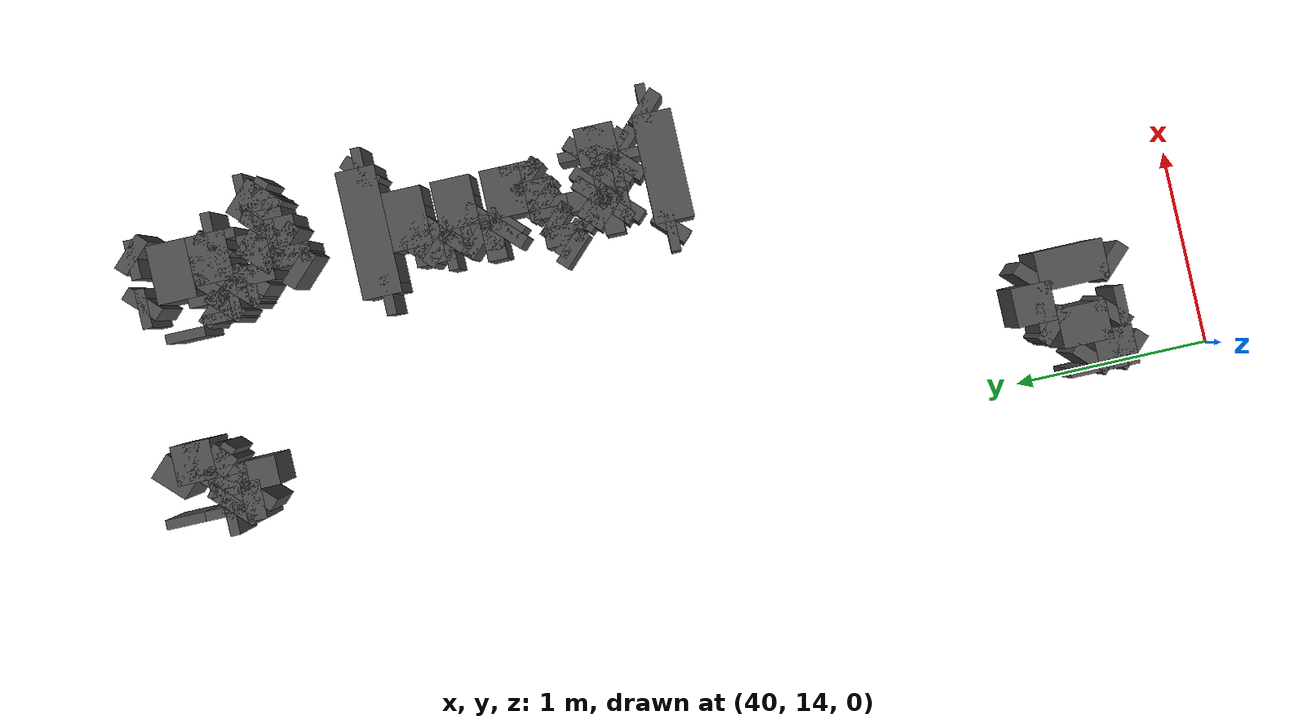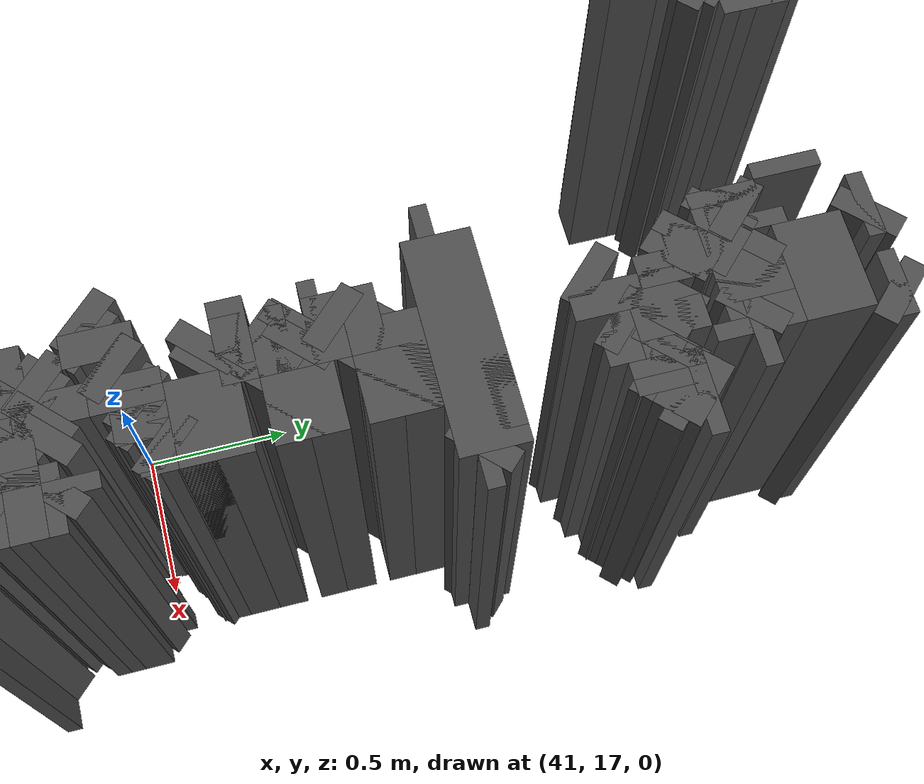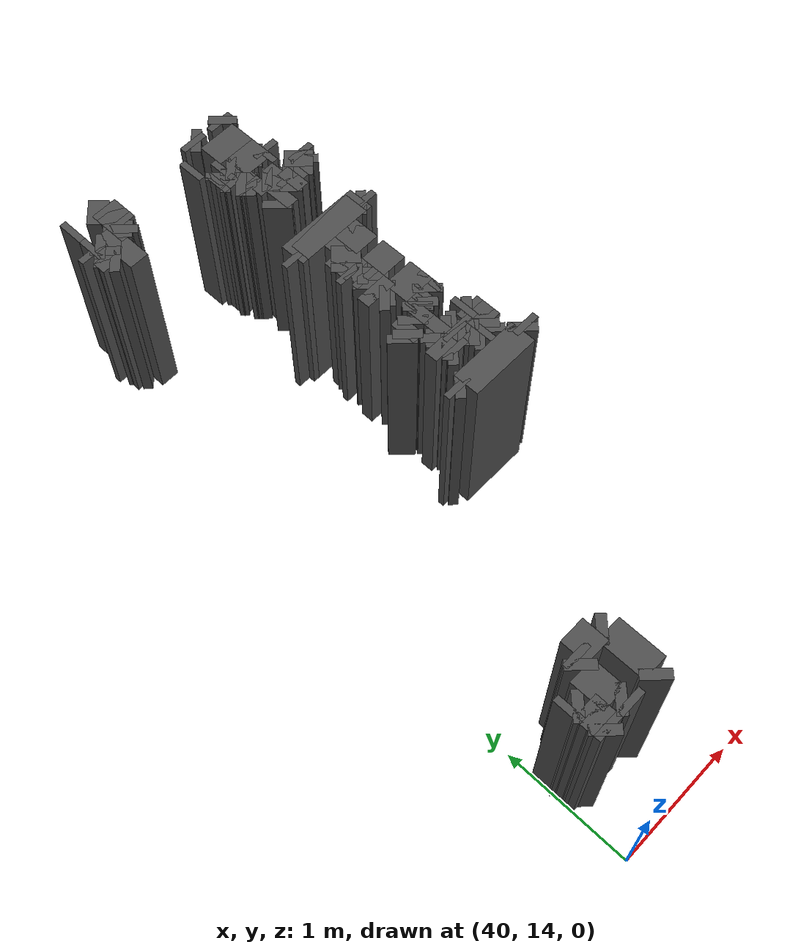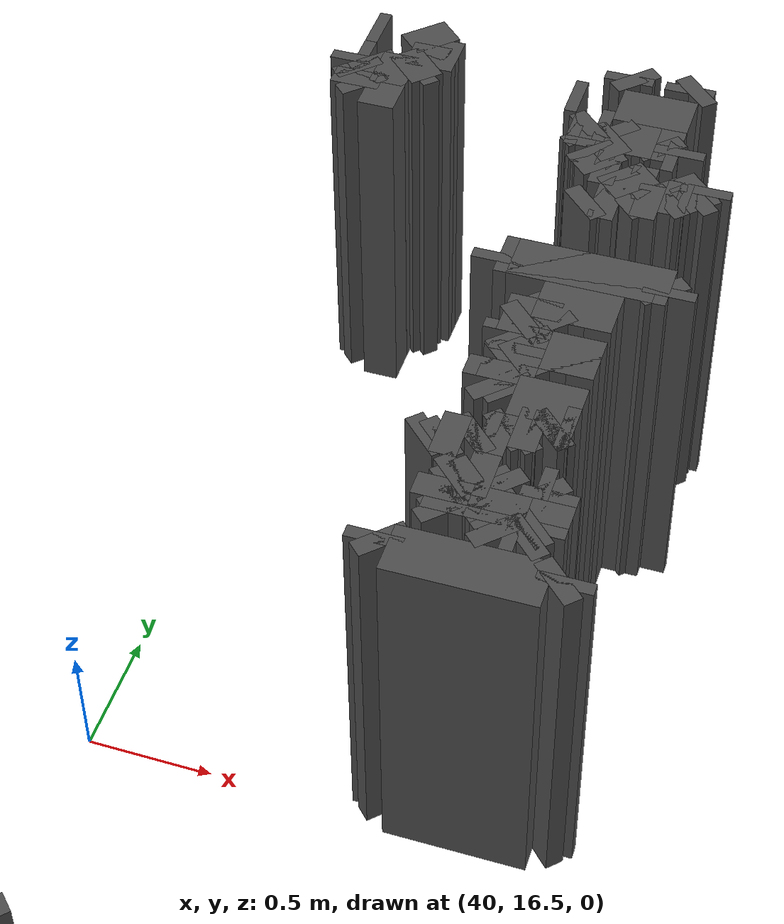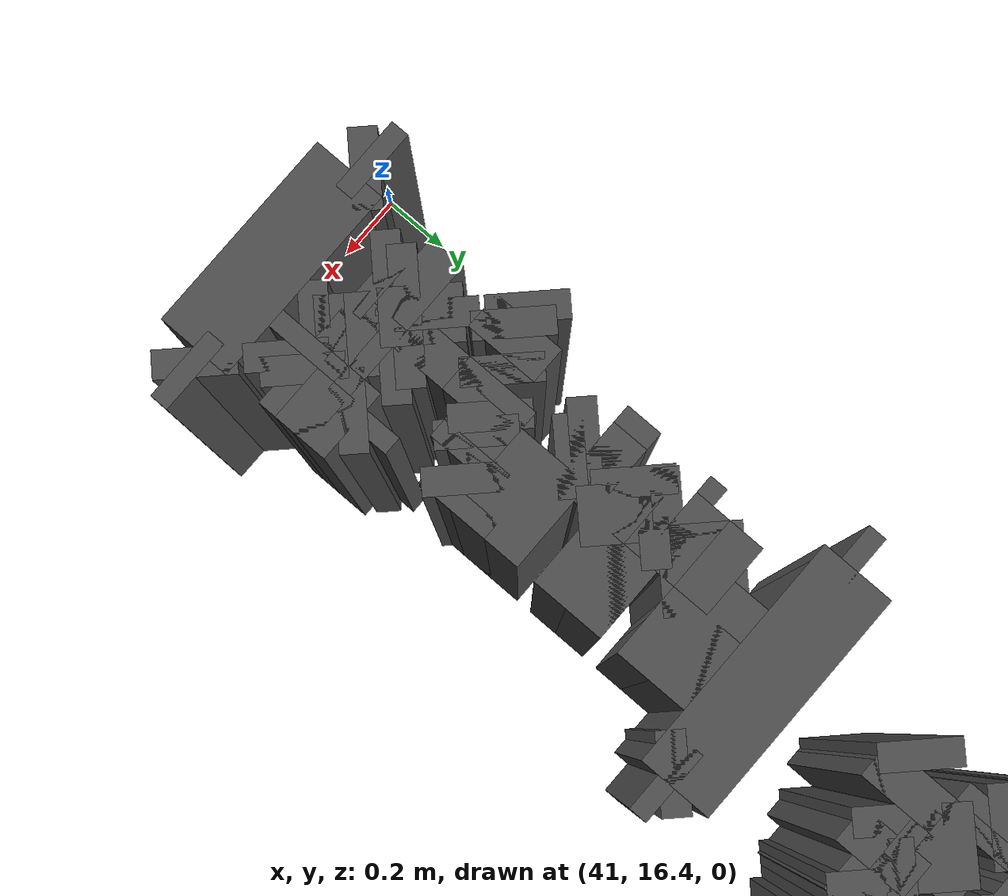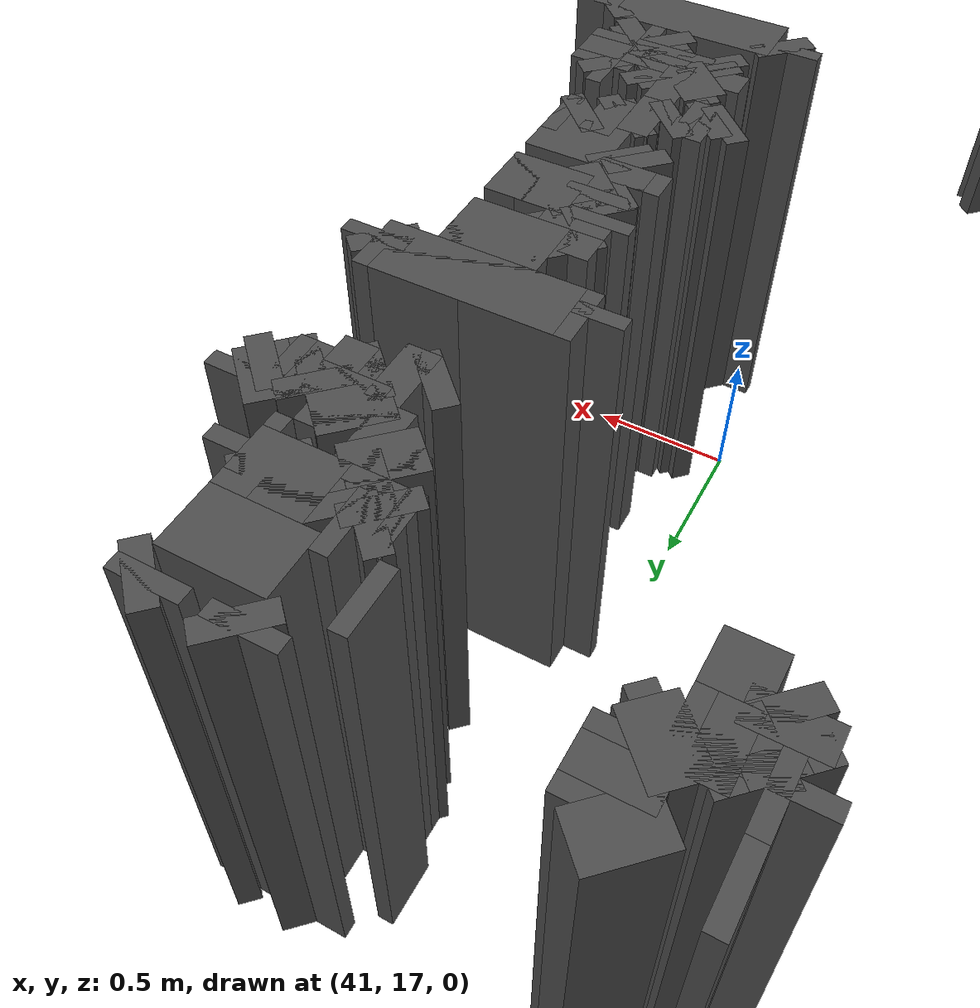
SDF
<sdf version="1.9">
 <model name="generated_walls">
  <static>true</static>
  <link name="wall_100_0">
   <pose>41.350 19.225 0.75 0 0 1.571</pose>
   <collision name="collision"><geometry><box><size>0.050 0.2 1.5</size></box></geometry></collision>
   <visual name="visual">
    <geometry><box><size>0.050 0.2 1.5</size></box></geometry>
    <material><ambient>0.3 0.3 0.3 1</ambient></material>
   </visual>
  </link>
  <link name="wall_100_11">
   <pose>41.625 19.225 0.75 0 0 -2.356</pose>
   <collision name="collision"><geometry><box><size>0.071 0.2 1.5</size></box></geometry></collision>
   <visual name="visual">
    <geometry><box><size>0.071 0.2 1.5</size></box></geometry>
    <material><ambient>0.3 0.3 0.3 1</ambient></material>
   </visual>
  </link>
  <link name="wall_100_12">
   <pose>41.600 19.225 0.75 0 0 1.571</pose>
   <collision name="collision"><geometry><box><size>0.050 0.2 1.5</size></box></geometry></collision>
   <visual name="visual">
    <geometry><box><size>0.050 0.2 1.5</size></box></geometry>
    <material><ambient>0.3 0.3 0.3 1</ambient></material>
   </visual>
  </link>
  <link name="wall_100_19">
   <pose>41.375 19.225 0.75 0 0 -0.785</pose>
   <collision name="collision"><geometry><box><size>0.071 0.2 1.5</size></box></geometry></collision>
   <visual name="visual">
    <geometry><box><size>0.071 0.2 1.5</size></box></geometry>
    <material><ambient>0.3 0.3 0.3 1</ambient></material>
   </visual>
  </link>
  <link name="wall_104_0">
   <pose>41.500 19.050 0.75 0 0 0.000</pose>
   <collision name="collision"><geometry><box><size>0.300 0.2 1.5</size></box></geometry></collision>
   <visual name="visual">
    <geometry><box><size>0.300 0.2 1.5</size></box></geometry>
    <material><ambient>0.3 0.3 0.3 1</ambient></material>
   </visual>
  </link>
  <link name="wall_105_0">
   <pose>41.175 19.050 0.75 0 0 0.000</pose>
   <collision name="collision"><geometry><box><size>0.050 0.2 1.5</size></box></geometry></collision>
   <visual name="visual">
    <geometry><box><size>0.050 0.2 1.5</size></box></geometry>
    <material><ambient>0.3 0.3 0.3 1</ambient></material>
   </visual>
  </link>
  <link name="wall_106_0">
   <pose>40.300 18.900 0.75 0 0 1.571</pose>
   <collision name="collision"><geometry><box><size>0.100 0.2 1.5</size></box></geometry></collision>
   <visual name="visual">
    <geometry><box><size>0.100 0.2 1.5</size></box></geometry>
    <material><ambient>0.3 0.3 0.3 1</ambient></material>
   </visual>
  </link>
  <link name="wall_106_1">
   <pose>40.275 18.975 0.75 0 0 2.356</pose>
   <collision name="collision"><geometry><box><size>0.071 0.2 1.5</size></box></geometry></collision>
   <visual name="visual">
    <geometry><box><size>0.071 0.2 1.5</size></box></geometry>
    <material><ambient>0.3 0.3 0.3 1</ambient></material>
   </visual>
  </link>
  <link name="wall_106_2">
   <pose>40.250 19.025 0.75 0 0 1.571</pose>
   <collision name="collision"><geometry><box><size>0.050 0.2 1.5</size></box></geometry></collision>
   <visual name="visual">
    <geometry><box><size>0.050 0.2 1.5</size></box></geometry>
    <material><ambient>0.3 0.3 0.3 1</ambient></material>
   </visual>
  </link>
  <link name="wall_106_3">
   <pose>40.275 19.050 0.75 0 0 0.000</pose>
   <collision name="collision"><geometry><box><size>0.050 0.2 1.5</size></box></geometry></collision>
   <visual name="visual">
    <geometry><box><size>0.050 0.2 1.5</size></box></geometry>
    <material><ambient>0.3 0.3 0.3 1</ambient></material>
   </visual>
  </link>
  <link name="wall_106_4">
   <pose>40.325 19.025 0.75 0 0 -0.785</pose>
   <collision name="collision"><geometry><box><size>0.071 0.2 1.5</size></box></geometry></collision>
   <visual name="visual">
    <geometry><box><size>0.071 0.2 1.5</size></box></geometry>
    <material><ambient>0.3 0.3 0.3 1</ambient></material>
   </visual>
  </link>
  <link name="wall_106_5">
   <pose>40.400 19.000 0.75 0 0 0.000</pose>
   <collision name="collision"><geometry><box><size>0.100 0.2 1.5</size></box></geometry></collision>
   <visual name="visual">
    <geometry><box><size>0.100 0.2 1.5</size></box></geometry>
    <material><ambient>0.3 0.3 0.3 1</ambient></material>
   </visual>
  </link>
  <link name="wall_106_6">
   <pose>40.500 19.050 0.75 0 0 0.785</pose>
   <collision name="collision"><geometry><box><size>0.141 0.2 1.5</size></box></geometry></collision>
   <visual name="visual">
    <geometry><box><size>0.141 0.2 1.5</size></box></geometry>
    <material><ambient>0.3 0.3 0.3 1</ambient></material>
   </visual>
  </link>
  <link name="wall_106_7">
   <pose>40.550 19.150 0.75 0 0 1.571</pose>
   <collision name="collision"><geometry><box><size>0.100 0.2 1.5</size></box></geometry></collision>
   <visual name="visual">
    <geometry><box><size>0.100 0.2 1.5</size></box></geometry>
    <material><ambient>0.3 0.3 0.3 1</ambient></material>
   </visual>
  </link>
  <link name="wall_106_8">
   <pose>40.500 19.250 0.75 0 0 2.356</pose>
   <collision name="collision"><geometry><box><size>0.141 0.2 1.5</size></box></geometry></collision>
   <visual name="visual">
    <geometry><box><size>0.141 0.2 1.5</size></box></geometry>
    <material><ambient>0.3 0.3 0.3 1</ambient></material>
   </visual>
  </link>
  <link name="wall_106_11">
   <pose>40.275 19.250 0.75 0 0 3.142</pose>
   <collision name="collision"><geometry><box><size>0.050 0.2 1.5</size></box></geometry></collision>
   <visual name="visual">
    <geometry><box><size>0.050 0.2 1.5</size></box></geometry>
    <material><ambient>0.3 0.3 0.3 1</ambient></material>
   </visual>
  </link>
  <link name="wall_106_15">
   <pose>40.550 19.150 0.75 0 0 -1.571</pose>
   <collision name="collision"><geometry><box><size>0.200 0.2 1.5</size></box></geometry></collision>
   <visual name="visual">
    <geometry><box><size>0.200 0.2 1.5</size></box></geometry>
    <material><ambient>0.3 0.3 0.3 1</ambient></material>
   </visual>
  </link>
  <link name="wall_106_16">
   <pose>40.525 19.025 0.75 0 0 -2.356</pose>
   <collision name="collision"><geometry><box><size>0.071 0.2 1.5</size></box></geometry></collision>
   <visual name="visual">
    <geometry><box><size>0.071 0.2 1.5</size></box></geometry>
    <material><ambient>0.3 0.3 0.3 1</ambient></material>
   </visual>
  </link>
  <link name="wall_106_17">
   <pose>40.425 19.000 0.75 0 0 3.142</pose>
   <collision name="collision"><geometry><box><size>0.150 0.2 1.5</size></box></geometry></collision>
   <visual name="visual">
    <geometry><box><size>0.150 0.2 1.5</size></box></geometry>
    <material><ambient>0.3 0.3 0.3 1</ambient></material>
   </visual>
  </link>
  <link name="wall_106_18">
   <pose>40.325 18.975 0.75 0 0 -2.356</pose>
   <collision name="collision"><geometry><box><size>0.071 0.2 1.5</size></box></geometry></collision>
   <visual name="visual">
    <geometry><box><size>0.071 0.2 1.5</size></box></geometry>
    <material><ambient>0.3 0.3 0.3 1</ambient></material>
   </visual>
  </link>
  <link name="wall_106_19">
   <pose>40.300 18.925 0.75 0 0 -1.571</pose>
   <collision name="collision"><geometry><box><size>0.050 0.2 1.5</size></box></geometry></collision>
   <visual name="visual">
    <geometry><box><size>0.050 0.2 1.5</size></box></geometry>
    <material><ambient>0.3 0.3 0.3 1</ambient></material>
   </visual>
  </link>
  <link name="wall_106_20">
   <pose>40.325 18.875 0.75 0 0 -0.785</pose>
   <collision name="collision"><geometry><box><size>0.071 0.2 1.5</size></box></geometry></collision>
   <visual name="visual">
    <geometry><box><size>0.071 0.2 1.5</size></box></geometry>
    <material><ambient>0.3 0.3 0.3 1</ambient></material>
   </visual>
  </link>
  <link name="wall_106_21">
   <pose>40.425 18.850 0.75 0 0 0.000</pose>
   <collision name="collision"><geometry><box><size>0.150 0.2 1.5</size></box></geometry></collision>
   <visual name="visual">
    <geometry><box><size>0.150 0.2 1.5</size></box></geometry>
    <material><ambient>0.3 0.3 0.3 1</ambient></material>
   </visual>
  </link>
  <link name="wall_112_0">
   <pose>41.375 18.425 0.75 0 0 0.785</pose>
   <collision name="collision"><geometry><box><size>0.071 0.2 1.5</size></box></geometry></collision>
   <visual name="visual">
    <geometry><box><size>0.071 0.2 1.5</size></box></geometry>
    <material><ambient>0.3 0.3 0.3 1</ambient></material>
   </visual>
  </link>
  <link name="wall_112_1">
   <pose>41.450 18.450 0.75 0 0 0.000</pose>
   <collision name="collision"><geometry><box><size>0.100 0.2 1.5</size></box></geometry></collision>
   <visual name="visual">
    <geometry><box><size>0.100 0.2 1.5</size></box></geometry>
    <material><ambient>0.3 0.3 0.3 1</ambient></material>
   </visual>
  </link>
  <link name="wall_112_2">
   <pose>41.525 18.475 0.75 0 0 0.785</pose>
   <collision name="collision"><geometry><box><size>0.071 0.2 1.5</size></box></geometry></collision>
   <visual name="visual">
    <geometry><box><size>0.071 0.2 1.5</size></box></geometry>
    <material><ambient>0.3 0.3 0.3 1</ambient></material>
   </visual>
  </link>
  <link name="wall_112_3">
   <pose>41.550 18.525 0.75 0 0 1.571</pose>
   <collision name="collision"><geometry><box><size>0.050 0.2 1.5</size></box></geometry></collision>
   <visual name="visual">
    <geometry><box><size>0.050 0.2 1.5</size></box></geometry>
    <material><ambient>0.3 0.3 0.3 1</ambient></material>
   </visual>
  </link>
  <link name="wall_112_4">
   <pose>41.500 18.600 0.75 0 0 2.356</pose>
   <collision name="collision"><geometry><box><size>0.141 0.2 1.5</size></box></geometry></collision>
   <visual name="visual">
    <geometry><box><size>0.141 0.2 1.5</size></box></geometry>
    <material><ambient>0.3 0.3 0.3 1</ambient></material>
   </visual>
  </link>
  <link name="wall_112_5">
   <pose>41.400 18.650 0.75 0 0 3.142</pose>
   <collision name="collision"><geometry><box><size>0.100 0.2 1.5</size></box></geometry></collision>
   <visual name="visual">
    <geometry><box><size>0.100 0.2 1.5</size></box></geometry>
    <material><ambient>0.3 0.3 0.3 1</ambient></material>
   </visual>
  </link>
  <link name="wall_112_6">
   <pose>41.350 18.675 0.75 0 0 1.571</pose>
   <collision name="collision"><geometry><box><size>0.050 0.2 1.5</size></box></geometry></collision>
   <visual name="visual">
    <geometry><box><size>0.050 0.2 1.5</size></box></geometry>
    <material><ambient>0.3 0.3 0.3 1</ambient></material>
   </visual>
  </link>
  <link name="wall_112_7">
   <pose>41.325 18.725 0.75 0 0 2.356</pose>
   <collision name="collision"><geometry><box><size>0.071 0.2 1.5</size></box></geometry></collision>
   <visual name="visual">
    <geometry><box><size>0.071 0.2 1.5</size></box></geometry>
    <material><ambient>0.3 0.3 0.3 1</ambient></material>
   </visual>
  </link>
  <link name="wall_112_8">
   <pose>41.300 18.775 0.75 0 0 1.571</pose>
   <collision name="collision"><geometry><box><size>0.050 0.2 1.5</size></box></geometry></collision>
   <visual name="visual">
    <geometry><box><size>0.050 0.2 1.5</size></box></geometry>
    <material><ambient>0.3 0.3 0.3 1</ambient></material>
   </visual>
  </link>
  <link name="wall_112_9">
   <pose>41.275 18.825 0.75 0 0 2.356</pose>
   <collision name="collision"><geometry><box><size>0.071 0.2 1.5</size></box></geometry></collision>
   <visual name="visual">
    <geometry><box><size>0.071 0.2 1.5</size></box></geometry>
    <material><ambient>0.3 0.3 0.3 1</ambient></material>
   </visual>
  </link>
  <link name="wall_112_10">
   <pose>41.225 18.850 0.75 0 0 3.142</pose>
   <collision name="collision"><geometry><box><size>0.050 0.2 1.5</size></box></geometry></collision>
   <visual name="visual">
    <geometry><box><size>0.050 0.2 1.5</size></box></geometry>
    <material><ambient>0.3 0.3 0.3 1</ambient></material>
   </visual>
  </link>
  <link name="wall_112_11">
   <pose>41.225 18.850 0.75 0 0 0.000</pose>
   <collision name="collision"><geometry><box><size>0.050 0.2 1.5</size></box></geometry></collision>
   <visual name="visual">
    <geometry><box><size>0.050 0.2 1.5</size></box></geometry>
    <material><ambient>0.3 0.3 0.3 1</ambient></material>
   </visual>
  </link>
  <link name="wall_112_12">
   <pose>41.275 18.875 0.75 0 0 0.785</pose>
   <collision name="collision"><geometry><box><size>0.071 0.2 1.5</size></box></geometry></collision>
   <visual name="visual">
    <geometry><box><size>0.071 0.2 1.5</size></box></geometry>
    <material><ambient>0.3 0.3 0.3 1</ambient></material>
   </visual>
  </link>
  <link name="wall_112_13">
   <pose>41.325 18.900 0.75 0 0 0.000</pose>
   <collision name="collision"><geometry><box><size>0.050 0.2 1.5</size></box></geometry></collision>
   <visual name="visual">
    <geometry><box><size>0.050 0.2 1.5</size></box></geometry>
    <material><ambient>0.3 0.3 0.3 1</ambient></material>
   </visual>
  </link>
  <link name="wall_112_14">
   <pose>41.375 18.875 0.75 0 0 -0.785</pose>
   <collision name="collision"><geometry><box><size>0.071 0.2 1.5</size></box></geometry></collision>
   <visual name="visual">
    <geometry><box><size>0.071 0.2 1.5</size></box></geometry>
    <material><ambient>0.3 0.3 0.3 1</ambient></material>
   </visual>
  </link>
  <link name="wall_112_15">
   <pose>41.525 18.850 0.75 0 0 0.000</pose>
   <collision name="collision"><geometry><box><size>0.250 0.2 1.5</size></box></geometry></collision>
   <visual name="visual">
    <geometry><box><size>0.250 0.2 1.5</size></box></geometry>
    <material><ambient>0.3 0.3 0.3 1</ambient></material>
   </visual>
  </link>
  <link name="wall_112_16">
   <pose>41.650 18.825 0.75 0 0 -1.571</pose>
   <collision name="collision"><geometry><box><size>0.050 0.2 1.5</size></box></geometry></collision>
   <visual name="visual">
    <geometry><box><size>0.050 0.2 1.5</size></box></geometry>
    <material><ambient>0.3 0.3 0.3 1</ambient></material>
   </visual>
  </link>
  <link name="wall_112_17">
   <pose>41.625 18.800 0.75 0 0 3.142</pose>
   <collision name="collision"><geometry><box><size>0.050 0.2 1.5</size></box></geometry></collision>
   <visual name="visual">
    <geometry><box><size>0.050 0.2 1.5</size></box></geometry>
    <material><ambient>0.3 0.3 0.3 1</ambient></material>
   </visual>
  </link>
  <link name="wall_112_18">
   <pose>41.575 18.825 0.75 0 0 2.356</pose>
   <collision name="collision"><geometry><box><size>0.071 0.2 1.5</size></box></geometry></collision>
   <visual name="visual">
    <geometry><box><size>0.071 0.2 1.5</size></box></geometry>
    <material><ambient>0.3 0.3 0.3 1</ambient></material>
   </visual>
  </link>
  <link name="wall_112_19">
   <pose>41.475 18.850 0.75 0 0 3.142</pose>
   <collision name="collision"><geometry><box><size>0.150 0.2 1.5</size></box></geometry></collision>
   <visual name="visual">
    <geometry><box><size>0.150 0.2 1.5</size></box></geometry>
    <material><ambient>0.3 0.3 0.3 1</ambient></material>
   </visual>
  </link>
  <link name="wall_112_20">
   <pose>41.350 18.800 0.75 0 0 -2.356</pose>
   <collision name="collision"><geometry><box><size>0.141 0.2 1.5</size></box></geometry></collision>
   <visual name="visual">
    <geometry><box><size>0.141 0.2 1.5</size></box></geometry>
    <material><ambient>0.3 0.3 0.3 1</ambient></material>
   </visual>
  </link>
  <link name="wall_112_21">
   <pose>41.350 18.700 0.75 0 0 -0.785</pose>
   <collision name="collision"><geometry><box><size>0.141 0.2 1.5</size></box></geometry></collision>
   <visual name="visual">
    <geometry><box><size>0.141 0.2 1.5</size></box></geometry>
    <material><ambient>0.3 0.3 0.3 1</ambient></material>
   </visual>
  </link>
  <link name="wall_112_22">
   <pose>41.425 18.650 0.75 0 0 0.000</pose>
   <collision name="collision"><geometry><box><size>0.050 0.2 1.5</size></box></geometry></collision>
   <visual name="visual">
    <geometry><box><size>0.050 0.2 1.5</size></box></geometry>
    <material><ambient>0.3 0.3 0.3 1</ambient></material>
   </visual>
  </link>
  <link name="wall_112_23">
   <pose>41.475 18.625 0.75 0 0 -0.785</pose>
   <collision name="collision"><geometry><box><size>0.071 0.2 1.5</size></box></geometry></collision>
   <visual name="visual">
    <geometry><box><size>0.071 0.2 1.5</size></box></geometry>
    <material><ambient>0.3 0.3 0.3 1</ambient></material>
   </visual>
  </link>
  <link name="wall_112_24">
   <pose>41.550 18.600 0.75 0 0 0.000</pose>
   <collision name="collision"><geometry><box><size>0.100 0.2 1.5</size></box></geometry></collision>
   <visual name="visual">
    <geometry><box><size>0.100 0.2 1.5</size></box></geometry>
    <material><ambient>0.3 0.3 0.3 1</ambient></material>
   </visual>
  </link>
  <link name="wall_112_25">
   <pose>41.625 18.575 0.75 0 0 -0.785</pose>
   <collision name="collision"><geometry><box><size>0.071 0.2 1.5</size></box></geometry></collision>
   <visual name="visual">
    <geometry><box><size>0.071 0.2 1.5</size></box></geometry>
    <material><ambient>0.3 0.3 0.3 1</ambient></material>
   </visual>
  </link>
  <link name="wall_112_26">
   <pose>41.675 18.550 0.75 0 0 0.000</pose>
   <collision name="collision"><geometry><box><size>0.050 0.2 1.5</size></box></geometry></collision>
   <visual name="visual">
    <geometry><box><size>0.050 0.2 1.5</size></box></geometry>
    <material><ambient>0.3 0.3 0.3 1</ambient></material>
   </visual>
  </link>
  <link name="wall_112_27">
   <pose>41.750 18.600 0.75 0 0 0.785</pose>
   <collision name="collision"><geometry><box><size>0.141 0.2 1.5</size></box></geometry></collision>
   <visual name="visual">
    <geometry><box><size>0.141 0.2 1.5</size></box></geometry>
    <material><ambient>0.3 0.3 0.3 1</ambient></material>
   </visual>
  </link>
  <link name="wall_112_28">
   <pose>41.800 18.625 0.75 0 0 -1.571</pose>
   <collision name="collision"><geometry><box><size>0.050 0.2 1.5</size></box></geometry></collision>
   <visual name="visual">
    <geometry><box><size>0.050 0.2 1.5</size></box></geometry>
    <material><ambient>0.3 0.3 0.3 1</ambient></material>
   </visual>
  </link>
  <link name="wall_112_29">
   <pose>41.775 18.575 0.75 0 0 -2.356</pose>
   <collision name="collision"><geometry><box><size>0.071 0.2 1.5</size></box></geometry></collision>
   <visual name="visual">
    <geometry><box><size>0.071 0.2 1.5</size></box></geometry>
    <material><ambient>0.3 0.3 0.3 1</ambient></material>
   </visual>
  </link>
  <link name="wall_112_30">
   <pose>41.725 18.550 0.75 0 0 3.142</pose>
   <collision name="collision"><geometry><box><size>0.050 0.2 1.5</size></box></geometry></collision>
   <visual name="visual">
    <geometry><box><size>0.050 0.2 1.5</size></box></geometry>
    <material><ambient>0.3 0.3 0.3 1</ambient></material>
   </visual>
  </link>
  <link name="wall_112_31">
   <pose>41.675 18.525 0.75 0 0 -2.356</pose>
   <collision name="collision"><geometry><box><size>0.071 0.2 1.5</size></box></geometry></collision>
   <visual name="visual">
    <geometry><box><size>0.071 0.2 1.5</size></box></geometry>
    <material><ambient>0.3 0.3 0.3 1</ambient></material>
   </visual>
  </link>
  <link name="wall_112_32">
   <pose>41.600 18.500 0.75 0 0 3.142</pose>
   <collision name="collision"><geometry><box><size>0.100 0.2 1.5</size></box></geometry></collision>
   <visual name="visual">
    <geometry><box><size>0.100 0.2 1.5</size></box></geometry>
    <material><ambient>0.3 0.3 0.3 1</ambient></material>
   </visual>
  </link>
  <link name="wall_112_33">
   <pose>41.525 18.475 0.75 0 0 -2.356</pose>
   <collision name="collision"><geometry><box><size>0.071 0.2 1.5</size></box></geometry></collision>
   <visual name="visual">
    <geometry><box><size>0.071 0.2 1.5</size></box></geometry>
    <material><ambient>0.3 0.3 0.3 1</ambient></material>
   </visual>
  </link>
  <link name="wall_112_34">
   <pose>41.450 18.450 0.75 0 0 3.142</pose>
   <collision name="collision"><geometry><box><size>0.100 0.2 1.5</size></box></geometry></collision>
   <visual name="visual">
    <geometry><box><size>0.100 0.2 1.5</size></box></geometry>
    <material><ambient>0.3 0.3 0.3 1</ambient></material>
   </visual>
  </link>
  <link name="wall_116_0">
   <pose>41.150 18.025 0.75 0 0 1.571</pose>
   <collision name="collision"><geometry><box><size>0.050 0.2 1.5</size></box></geometry></collision>
   <visual name="visual">
    <geometry><box><size>0.050 0.2 1.5</size></box></geometry>
    <material><ambient>0.3 0.3 0.3 1</ambient></material>
   </visual>
  </link>
  <link name="wall_116_1">
   <pose>41.475 18.050 0.75 0 0 0.000</pose>
   <collision name="collision"><geometry><box><size>0.650 0.2 1.5</size></box></geometry></collision>
   <visual name="visual">
    <geometry><box><size>0.650 0.2 1.5</size></box></geometry>
    <material><ambient>0.3 0.3 0.3 1</ambient></material>
   </visual>
  </link>
  <link name="wall_116_2">
   <pose>41.800 18.025 0.75 0 0 -1.571</pose>
   <collision name="collision"><geometry><box><size>0.050 0.2 1.5</size></box></geometry></collision>
   <visual name="visual">
    <geometry><box><size>0.050 0.2 1.5</size></box></geometry>
    <material><ambient>0.3 0.3 0.3 1</ambient></material>
   </visual>
  </link>
  <link name="wall_116_3">
   <pose>41.775 18.025 0.75 0 0 2.356</pose>
   <collision name="collision"><geometry><box><size>0.071 0.2 1.5</size></box></geometry></collision>
   <visual name="visual">
    <geometry><box><size>0.071 0.2 1.5</size></box></geometry>
    <material><ambient>0.3 0.3 0.3 1</ambient></material>
   </visual>
  </link>
  <link name="wall_116_4">
   <pose>41.475 18.050 0.75 0 0 3.142</pose>
   <collision name="collision"><geometry><box><size>0.550 0.2 1.5</size></box></geometry></collision>
   <visual name="visual">
    <geometry><box><size>0.550 0.2 1.5</size></box></geometry>
    <material><ambient>0.3 0.3 0.3 1</ambient></material>
   </visual>
  </link>
  <link name="wall_118_0">
   <pose>41.325 17.375 0.75 0 0 2.356</pose>
   <collision name="collision"><geometry><box><size>0.071 0.2 1.5</size></box></geometry></collision>
   <visual name="visual">
    <geometry><box><size>0.071 0.2 1.5</size></box></geometry>
    <material><ambient>0.3 0.3 0.3 1</ambient></material>
   </visual>
  </link>
  <link name="wall_118_1">
   <pose>41.300 17.450 0.75 0 0 1.571</pose>
   <collision name="collision"><geometry><box><size>0.100 0.2 1.5</size></box></geometry></collision>
   <visual name="visual">
    <geometry><box><size>0.100 0.2 1.5</size></box></geometry>
    <material><ambient>0.3 0.3 0.3 1</ambient></material>
   </visual>
  </link>
  <link name="wall_118_2">
   <pose>41.325 17.525 0.75 0 0 0.785</pose>
   <collision name="collision"><geometry><box><size>0.071 0.2 1.5</size></box></geometry></collision>
   <visual name="visual">
    <geometry><box><size>0.071 0.2 1.5</size></box></geometry>
    <material><ambient>0.3 0.3 0.3 1</ambient></material>
   </visual>
  </link>
  <link name="wall_118_3">
   <pose>41.350 17.575 0.75 0 0 1.571</pose>
   <collision name="collision"><geometry><box><size>0.050 0.2 1.5</size></box></geometry></collision>
   <visual name="visual">
    <geometry><box><size>0.050 0.2 1.5</size></box></geometry>
    <material><ambient>0.3 0.3 0.3 1</ambient></material>
   </visual>
  </link>
  <link name="wall_118_4">
   <pose>41.325 17.625 0.75 0 0 2.356</pose>
   <collision name="collision"><geometry><box><size>0.071 0.2 1.5</size></box></geometry></collision>
   <visual name="visual">
    <geometry><box><size>0.071 0.2 1.5</size></box></geometry>
    <material><ambient>0.3 0.3 0.3 1</ambient></material>
   </visual>
  </link>
  <link name="wall_118_5">
   <pose>41.300 17.675 0.75 0 0 1.571</pose>
   <collision name="collision"><geometry><box><size>0.050 0.2 1.5</size></box></geometry></collision>
   <visual name="visual">
    <geometry><box><size>0.050 0.2 1.5</size></box></geometry>
    <material><ambient>0.3 0.3 0.3 1</ambient></material>
   </visual>
  </link>
  <link name="wall_118_6">
   <pose>41.325 17.725 0.75 0 0 0.785</pose>
   <collision name="collision"><geometry><box><size>0.071 0.2 1.5</size></box></geometry></collision>
   <visual name="visual">
    <geometry><box><size>0.071 0.2 1.5</size></box></geometry>
    <material><ambient>0.3 0.3 0.3 1</ambient></material>
   </visual>
  </link>
  <link name="wall_118_7">
   <pose>41.350 17.800 0.75 0 0 1.571</pose>
   <collision name="collision"><geometry><box><size>0.100 0.2 1.5</size></box></geometry></collision>
   <visual name="visual">
    <geometry><box><size>0.100 0.2 1.5</size></box></geometry>
    <material><ambient>0.3 0.3 0.3 1</ambient></material>
   </visual>
  </link>
  <link name="wall_118_8">
   <pose>41.500 17.850 0.75 0 0 0.000</pose>
   <collision name="collision"><geometry><box><size>0.300 0.2 1.5</size></box></geometry></collision>
   <visual name="visual">
    <geometry><box><size>0.300 0.2 1.5</size></box></geometry>
    <material><ambient>0.3 0.3 0.3 1</ambient></material>
   </visual>
  </link>
  <link name="wall_118_9">
   <pose>41.550 17.850 0.75 0 0 3.142</pose>
   <collision name="collision"><geometry><box><size>0.200 0.2 1.5</size></box></geometry></collision>
   <visual name="visual">
    <geometry><box><size>0.200 0.2 1.5</size></box></geometry>
    <material><ambient>0.3 0.3 0.3 1</ambient></material>
   </visual>
  </link>
  <link name="wall_118_10">
   <pose>41.400 17.800 0.75 0 0 -2.356</pose>
   <collision name="collision"><geometry><box><size>0.141 0.2 1.5</size></box></geometry></collision>
   <visual name="visual">
    <geometry><box><size>0.141 0.2 1.5</size></box></geometry>
    <material><ambient>0.3 0.3 0.3 1</ambient></material>
   </visual>
  </link>
  <link name="wall_118_11">
   <pose>41.350 17.700 0.75 0 0 -1.571</pose>
   <collision name="collision"><geometry><box><size>0.100 0.2 1.5</size></box></geometry></collision>
   <visual name="visual">
    <geometry><box><size>0.100 0.2 1.5</size></box></geometry>
    <material><ambient>0.3 0.3 0.3 1</ambient></material>
   </visual>
  </link>
  <link name="wall_118_12">
   <pose>41.375 17.625 0.75 0 0 -0.785</pose>
   <collision name="collision"><geometry><box><size>0.071 0.2 1.5</size></box></geometry></collision>
   <visual name="visual">
    <geometry><box><size>0.071 0.2 1.5</size></box></geometry>
    <material><ambient>0.3 0.3 0.3 1</ambient></material>
   </visual>
  </link>
  <link name="wall_118_13">
   <pose>41.525 17.600 0.75 0 0 0.000</pose>
   <collision name="collision"><geometry><box><size>0.250 0.2 1.5</size></box></geometry></collision>
   <visual name="visual">
    <geometry><box><size>0.250 0.2 1.5</size></box></geometry>
    <material><ambient>0.3 0.3 0.3 1</ambient></material>
   </visual>
  </link>
  <link name="wall_118_14">
   <pose>41.550 17.600 0.75 0 0 3.142</pose>
   <collision name="collision"><geometry><box><size>0.200 0.2 1.5</size></box></geometry></collision>
   <visual name="visual">
    <geometry><box><size>0.200 0.2 1.5</size></box></geometry>
    <material><ambient>0.3 0.3 0.3 1</ambient></material>
   </visual>
  </link>
  <link name="wall_118_15">
   <pose>41.400 17.550 0.75 0 0 -2.356</pose>
   <collision name="collision"><geometry><box><size>0.141 0.2 1.5</size></box></geometry></collision>
   <visual name="visual">
    <geometry><box><size>0.141 0.2 1.5</size></box></geometry>
    <material><ambient>0.3 0.3 0.3 1</ambient></material>
   </visual>
  </link>
  <link name="wall_118_16">
   <pose>41.350 17.450 0.75 0 0 -1.571</pose>
   <collision name="collision"><geometry><box><size>0.100 0.2 1.5</size></box></geometry></collision>
   <visual name="visual">
    <geometry><box><size>0.100 0.2 1.5</size></box></geometry>
    <material><ambient>0.3 0.3 0.3 1</ambient></material>
   </visual>
  </link>
  <link name="wall_118_17">
   <pose>41.375 17.375 0.75 0 0 -0.785</pose>
   <collision name="collision"><geometry><box><size>0.071 0.2 1.5</size></box></geometry></collision>
   <visual name="visual">
    <geometry><box><size>0.071 0.2 1.5</size></box></geometry>
    <material><ambient>0.3 0.3 0.3 1</ambient></material>
   </visual>
  </link>
  <link name="wall_118_18">
   <pose>41.525 17.350 0.75 0 0 0.000</pose>
   <collision name="collision"><geometry><box><size>0.250 0.2 1.5</size></box></geometry></collision>
   <visual name="visual">
    <geometry><box><size>0.250 0.2 1.5</size></box></geometry>
    <material><ambient>0.3 0.3 0.3 1</ambient></material>
   </visual>
  </link>
  <link name="wall_119_0">
   <pose>41.175 17.075 0.75 0 0 0.785</pose>
   <collision name="collision"><geometry><box><size>0.071 0.2 1.5</size></box></geometry></collision>
   <visual name="visual">
    <geometry><box><size>0.071 0.2 1.5</size></box></geometry>
    <material><ambient>0.3 0.3 0.3 1</ambient></material>
   </visual>
  </link>
  <link name="wall_119_1">
   <pose>41.250 17.100 0.75 0 0 0.000</pose>
   <collision name="collision"><geometry><box><size>0.100 0.2 1.5</size></box></geometry></collision>
   <visual name="visual">
    <geometry><box><size>0.100 0.2 1.5</size></box></geometry>
    <material><ambient>0.3 0.3 0.3 1</ambient></material>
   </visual>
  </link>
  <link name="wall_119_2">
   <pose>41.325 17.125 0.75 0 0 0.785</pose>
   <collision name="collision"><geometry><box><size>0.071 0.2 1.5</size></box></geometry></collision>
   <visual name="visual">
    <geometry><box><size>0.071 0.2 1.5</size></box></geometry>
    <material><ambient>0.3 0.3 0.3 1</ambient></material>
   </visual>
  </link>
  <link name="wall_119_3">
   <pose>41.375 17.150 0.75 0 0 0.000</pose>
   <collision name="collision"><geometry><box><size>0.050 0.2 1.5</size></box></geometry></collision>
   <visual name="visual">
    <geometry><box><size>0.050 0.2 1.5</size></box></geometry>
    <material><ambient>0.3 0.3 0.3 1</ambient></material>
   </visual>
  </link>
  <link name="wall_119_4">
   <pose>41.425 17.175 0.75 0 0 0.785</pose>
   <collision name="collision"><geometry><box><size>0.071 0.2 1.5</size></box></geometry></collision>
   <visual name="visual">
    <geometry><box><size>0.071 0.2 1.5</size></box></geometry>
    <material><ambient>0.3 0.3 0.3 1</ambient></material>
   </visual>
  </link>
  <link name="wall_119_5">
   <pose>41.500 17.200 0.75 0 0 0.000</pose>
   <collision name="collision"><geometry><box><size>0.100 0.2 1.5</size></box></geometry></collision>
   <visual name="visual">
    <geometry><box><size>0.100 0.2 1.5</size></box></geometry>
    <material><ambient>0.3 0.3 0.3 1</ambient></material>
   </visual>
  </link>
  <link name="wall_119_6">
   <pose>41.575 17.225 0.75 0 0 0.785</pose>
   <collision name="collision"><geometry><box><size>0.071 0.2 1.5</size></box></geometry></collision>
   <visual name="visual">
    <geometry><box><size>0.071 0.2 1.5</size></box></geometry>
    <material><ambient>0.3 0.3 0.3 1</ambient></material>
   </visual>
  </link>
  <link name="wall_119_7">
   <pose>41.625 17.250 0.75 0 0 0.000</pose>
   <collision name="collision"><geometry><box><size>0.050 0.2 1.5</size></box></geometry></collision>
   <visual name="visual">
    <geometry><box><size>0.050 0.2 1.5</size></box></geometry>
    <material><ambient>0.3 0.3 0.3 1</ambient></material>
   </visual>
  </link>
  <link name="wall_119_8">
   <pose>41.625 17.250 0.75 0 0 3.142</pose>
   <collision name="collision"><geometry><box><size>0.050 0.2 1.5</size></box></geometry></collision>
   <visual name="visual">
    <geometry><box><size>0.050 0.2 1.5</size></box></geometry>
    <material><ambient>0.3 0.3 0.3 1</ambient></material>
   </visual>
  </link>
  <link name="wall_119_9">
   <pose>41.575 17.225 0.75 0 0 -2.356</pose>
   <collision name="collision"><geometry><box><size>0.071 0.2 1.5</size></box></geometry></collision>
   <visual name="visual">
    <geometry><box><size>0.071 0.2 1.5</size></box></geometry>
    <material><ambient>0.3 0.3 0.3 1</ambient></material>
   </visual>
  </link>
  <link name="wall_119_10">
   <pose>41.525 17.200 0.75 0 0 3.142</pose>
   <collision name="collision"><geometry><box><size>0.050 0.2 1.5</size></box></geometry></collision>
   <visual name="visual">
    <geometry><box><size>0.050 0.2 1.5</size></box></geometry>
    <material><ambient>0.3 0.3 0.3 1</ambient></material>
   </visual>
  </link>
  <link name="wall_119_11">
   <pose>41.475 17.175 0.75 0 0 -2.356</pose>
   <collision name="collision"><geometry><box><size>0.071 0.2 1.5</size></box></geometry></collision>
   <visual name="visual">
    <geometry><box><size>0.071 0.2 1.5</size></box></geometry>
    <material><ambient>0.3 0.3 0.3 1</ambient></material>
   </visual>
  </link>
  <link name="wall_119_12">
   <pose>41.400 17.150 0.75 0 0 3.142</pose>
   <collision name="collision"><geometry><box><size>0.100 0.2 1.5</size></box></geometry></collision>
   <visual name="visual">
    <geometry><box><size>0.100 0.2 1.5</size></box></geometry>
    <material><ambient>0.3 0.3 0.3 1</ambient></material>
   </visual>
  </link>
  <link name="wall_119_13">
   <pose>41.325 17.125 0.75 0 0 -2.356</pose>
   <collision name="collision"><geometry><box><size>0.071 0.2 1.5</size></box></geometry></collision>
   <visual name="visual">
    <geometry><box><size>0.071 0.2 1.5</size></box></geometry>
    <material><ambient>0.3 0.3 0.3 1</ambient></material>
   </visual>
  </link>
  <link name="wall_119_14">
   <pose>41.275 17.100 0.75 0 0 3.142</pose>
   <collision name="collision"><geometry><box><size>0.050 0.2 1.5</size></box></geometry></collision>
   <visual name="visual">
    <geometry><box><size>0.050 0.2 1.5</size></box></geometry>
    <material><ambient>0.3 0.3 0.3 1</ambient></material>
   </visual>
  </link>
  <link name="wall_119_15">
   <pose>41.225 17.075 0.75 0 0 -2.356</pose>
   <collision name="collision"><geometry><box><size>0.071 0.2 1.5</size></box></geometry></collision>
   <visual name="visual">
    <geometry><box><size>0.071 0.2 1.5</size></box></geometry>
    <material><ambient>0.3 0.3 0.3 1</ambient></material>
   </visual>
  </link>
  <link name="wall_122_0">
   <pose>41.525 16.725 0.75 0 0 2.356</pose>
   <collision name="collision"><geometry><box><size>0.071 0.2 1.5</size></box></geometry></collision>
   <visual name="visual">
    <geometry><box><size>0.071 0.2 1.5</size></box></geometry>
    <material><ambient>0.3 0.3 0.3 1</ambient></material>
   </visual>
  </link>
  <link name="wall_122_1">
   <pose>41.500 16.775 0.75 0 0 1.571</pose>
   <collision name="collision"><geometry><box><size>0.050 0.2 1.5</size></box></geometry></collision>
   <visual name="visual">
    <geometry><box><size>0.050 0.2 1.5</size></box></geometry>
    <material><ambient>0.3 0.3 0.3 1</ambient></material>
   </visual>
  </link>
  <link name="wall_122_2">
   <pose>41.475 16.825 0.75 0 0 2.356</pose>
   <collision name="collision"><geometry><box><size>0.071 0.2 1.5</size></box></geometry></collision>
   <visual name="visual">
    <geometry><box><size>0.071 0.2 1.5</size></box></geometry>
    <material><ambient>0.3 0.3 0.3 1</ambient></material>
   </visual>
  </link>
  <link name="wall_122_3">
   <pose>41.450 16.875 0.75 0 0 1.571</pose>
   <collision name="collision"><geometry><box><size>0.050 0.2 1.5</size></box></geometry></collision>
   <visual name="visual">
    <geometry><box><size>0.050 0.2 1.5</size></box></geometry>
    <material><ambient>0.3 0.3 0.3 1</ambient></material>
   </visual>
  </link>
  <link name="wall_122_4">
   <pose>41.425 16.925 0.75 0 0 2.356</pose>
   <collision name="collision"><geometry><box><size>0.071 0.2 1.5</size></box></geometry></collision>
   <visual name="visual">
    <geometry><box><size>0.071 0.2 1.5</size></box></geometry>
    <material><ambient>0.3 0.3 0.3 1</ambient></material>
   </visual>
  </link>
  <link name="wall_122_5">
   <pose>41.350 16.900 0.75 0 0 -2.356</pose>
   <collision name="collision"><geometry><box><size>0.141 0.2 1.5</size></box></geometry></collision>
   <visual name="visual">
    <geometry><box><size>0.141 0.2 1.5</size></box></geometry>
    <material><ambient>0.3 0.3 0.3 1</ambient></material>
   </visual>
  </link>
  <link name="wall_122_6">
   <pose>41.325 16.825 0.75 0 0 -0.785</pose>
   <collision name="collision"><geometry><box><size>0.071 0.2 1.5</size></box></geometry></collision>
   <visual name="visual">
    <geometry><box><size>0.071 0.2 1.5</size></box></geometry>
    <material><ambient>0.3 0.3 0.3 1</ambient></material>
   </visual>
  </link>
  <link name="wall_122_7">
   <pose>41.350 16.775 0.75 0 0 -1.571</pose>
   <collision name="collision"><geometry><box><size>0.050 0.2 1.5</size></box></geometry></collision>
   <visual name="visual">
    <geometry><box><size>0.050 0.2 1.5</size></box></geometry>
    <material><ambient>0.3 0.3 0.3 1</ambient></material>
   </visual>
  </link>
  <link name="wall_122_8">
   <pose>41.325 16.775 0.75 0 0 2.356</pose>
   <collision name="collision"><geometry><box><size>0.071 0.2 1.5</size></box></geometry></collision>
   <visual name="visual">
    <geometry><box><size>0.071 0.2 1.5</size></box></geometry>
    <material><ambient>0.3 0.3 0.3 1</ambient></material>
   </visual>
  </link>
  <link name="wall_122_9">
   <pose>41.300 16.850 0.75 0 0 1.571</pose>
   <collision name="collision"><geometry><box><size>0.100 0.2 1.5</size></box></geometry></collision>
   <visual name="visual">
    <geometry><box><size>0.100 0.2 1.5</size></box></geometry>
    <material><ambient>0.3 0.3 0.3 1</ambient></material>
   </visual>
  </link>
  <link name="wall_122_10">
   <pose>41.325 16.925 0.75 0 0 0.785</pose>
   <collision name="collision"><geometry><box><size>0.071 0.2 1.5</size></box></geometry></collision>
   <visual name="visual">
    <geometry><box><size>0.071 0.2 1.5</size></box></geometry>
    <material><ambient>0.3 0.3 0.3 1</ambient></material>
   </visual>
  </link>
  <link name="wall_122_11">
   <pose>41.400 16.950 0.75 0 0 0.000</pose>
   <collision name="collision"><geometry><box><size>0.100 0.2 1.5</size></box></geometry></collision>
   <visual name="visual">
    <geometry><box><size>0.100 0.2 1.5</size></box></geometry>
    <material><ambient>0.3 0.3 0.3 1</ambient></material>
   </visual>
  </link>
  <link name="wall_122_12">
   <pose>41.475 16.925 0.75 0 0 -0.785</pose>
   <collision name="collision"><geometry><box><size>0.071 0.2 1.5</size></box></geometry></collision>
   <visual name="visual">
    <geometry><box><size>0.071 0.2 1.5</size></box></geometry>
    <material><ambient>0.3 0.3 0.3 1</ambient></material>
   </visual>
  </link>
  <link name="wall_122_13">
   <pose>41.500 16.850 0.75 0 0 -1.571</pose>
   <collision name="collision"><geometry><box><size>0.100 0.2 1.5</size></box></geometry></collision>
   <visual name="visual">
    <geometry><box><size>0.100 0.2 1.5</size></box></geometry>
    <material><ambient>0.3 0.3 0.3 1</ambient></material>
   </visual>
  </link>
  <link name="wall_122_14">
   <pose>41.525 16.775 0.75 0 0 -0.785</pose>
   <collision name="collision"><geometry><box><size>0.071 0.2 1.5</size></box></geometry></collision>
   <visual name="visual">
    <geometry><box><size>0.071 0.2 1.5</size></box></geometry>
    <material><ambient>0.3 0.3 0.3 1</ambient></material>
   </visual>
  </link>
  <link name="wall_122_15">
   <pose>41.575 16.750 0.75 0 0 0.000</pose>
   <collision name="collision"><geometry><box><size>0.050 0.2 1.5</size></box></geometry></collision>
   <visual name="visual">
    <geometry><box><size>0.050 0.2 1.5</size></box></geometry>
    <material><ambient>0.3 0.3 0.3 1</ambient></material>
   </visual>
  </link>
  <link name="wall_122_16">
   <pose>41.625 16.775 0.75 0 0 0.785</pose>
   <collision name="collision"><geometry><box><size>0.071 0.2 1.5</size></box></geometry></collision>
   <visual name="visual">
    <geometry><box><size>0.071 0.2 1.5</size></box></geometry>
    <material><ambient>0.3 0.3 0.3 1</ambient></material>
   </visual>
  </link>
  <link name="wall_122_17">
   <pose>41.650 16.850 0.75 0 0 1.571</pose>
   <collision name="collision"><geometry><box><size>0.100 0.2 1.5</size></box></geometry></collision>
   <visual name="visual">
    <geometry><box><size>0.100 0.2 1.5</size></box></geometry>
    <material><ambient>0.3 0.3 0.3 1</ambient></material>
   </visual>
  </link>
  <link name="wall_122_18">
   <pose>41.625 16.925 0.75 0 0 2.356</pose>
   <collision name="collision"><geometry><box><size>0.071 0.2 1.5</size></box></geometry></collision>
   <visual name="visual">
    <geometry><box><size>0.071 0.2 1.5</size></box></geometry>
    <material><ambient>0.3 0.3 0.3 1</ambient></material>
   </visual>
  </link>
  <link name="wall_122_19">
   <pose>41.625 16.950 0.75 0 0 0.000</pose>
   <collision name="collision"><geometry><box><size>0.050 0.2 1.5</size></box></geometry></collision>
   <visual name="visual">
    <geometry><box><size>0.050 0.2 1.5</size></box></geometry>
    <material><ambient>0.3 0.3 0.3 1</ambient></material>
   </visual>
  </link>
  <link name="wall_122_20">
   <pose>41.650 16.850 0.75 0 0 -1.571</pose>
   <collision name="collision"><geometry><box><size>0.200 0.2 1.5</size></box></geometry></collision>
   <visual name="visual">
    <geometry><box><size>0.200 0.2 1.5</size></box></geometry>
    <material><ambient>0.3 0.3 0.3 1</ambient></material>
   </visual>
  </link>
  <link name="wall_122_21">
   <pose>41.625 16.725 0.75 0 0 -2.356</pose>
   <collision name="collision"><geometry><box><size>0.071 0.2 1.5</size></box></geometry></collision>
   <visual name="visual">
    <geometry><box><size>0.071 0.2 1.5</size></box></geometry>
    <material><ambient>0.3 0.3 0.3 1</ambient></material>
   </visual>
  </link>
  <link name="wall_124_0">
   <pose>41.150 16.575 0.75 0 0 1.571</pose>
   <collision name="collision"><geometry><box><size>0.050 0.2 1.5</size></box></geometry></collision>
   <visual name="visual">
    <geometry><box><size>0.050 0.2 1.5</size></box></geometry>
    <material><ambient>0.3 0.3 0.3 1</ambient></material>
   </visual>
  </link>
  <link name="wall_124_1">
   <pose>41.175 16.575 0.75 0 0 -0.785</pose>
   <collision name="collision"><geometry><box><size>0.071 0.2 1.5</size></box></geometry></collision>
   <visual name="visual">
    <geometry><box><size>0.071 0.2 1.5</size></box></geometry>
    <material><ambient>0.3 0.3 0.3 1</ambient></material>
   </visual>
  </link>
  <link name="wall_124_2">
   <pose>41.475 16.550 0.75 0 0 0.000</pose>
   <collision name="collision"><geometry><box><size>0.550 0.2 1.5</size></box></geometry></collision>
   <visual name="visual">
    <geometry><box><size>0.550 0.2 1.5</size></box></geometry>
    <material><ambient>0.3 0.3 0.3 1</ambient></material>
   </visual>
  </link>
  <link name="wall_124_3">
   <pose>41.775 16.575 0.75 0 0 0.785</pose>
   <collision name="collision"><geometry><box><size>0.071 0.2 1.5</size></box></geometry></collision>
   <visual name="visual">
    <geometry><box><size>0.071 0.2 1.5</size></box></geometry>
    <material><ambient>0.3 0.3 0.3 1</ambient></material>
   </visual>
  </link>
  <link name="wall_124_4">
   <pose>41.800 16.575 0.75 0 0 -1.571</pose>
   <collision name="collision"><geometry><box><size>0.050 0.2 1.5</size></box></geometry></collision>
   <visual name="visual">
    <geometry><box><size>0.050 0.2 1.5</size></box></geometry>
    <material><ambient>0.3 0.3 0.3 1</ambient></material>
   </visual>
  </link>
  <link name="wall_129_0">
   <pose>40.300 14.475 0.75 0 0 1.571</pose>
   <collision name="collision"><geometry><box><size>0.050 0.2 1.5</size></box></geometry></collision>
   <visual name="visual">
    <geometry><box><size>0.050 0.2 1.5</size></box></geometry>
    <material><ambient>0.3 0.3 0.3 1</ambient></material>
   </visual>
  </link>
  <link name="wall_129_1">
   <pose>40.275 14.525 0.75 0 0 2.356</pose>
   <collision name="collision"><geometry><box><size>0.071 0.2 1.5</size></box></geometry></collision>
   <visual name="visual">
    <geometry><box><size>0.071 0.2 1.5</size></box></geometry>
    <material><ambient>0.3 0.3 0.3 1</ambient></material>
   </visual>
  </link>
  <link name="wall_129_2">
   <pose>40.250 14.675 0.75 0 0 1.571</pose>
   <collision name="collision"><geometry><box><size>0.250 0.2 1.5</size></box></geometry></collision>
   <visual name="visual">
    <geometry><box><size>0.250 0.2 1.5</size></box></geometry>
    <material><ambient>0.3 0.3 0.3 1</ambient></material>
   </visual>
  </link>
  <link name="wall_129_3">
   <pose>40.275 14.825 0.75 0 0 0.785</pose>
   <collision name="collision"><geometry><box><size>0.071 0.2 1.5</size></box></geometry></collision>
   <visual name="visual">
    <geometry><box><size>0.071 0.2 1.5</size></box></geometry>
    <material><ambient>0.3 0.3 0.3 1</ambient></material>
   </visual>
  </link>
  <link name="wall_129_4">
   <pose>40.300 14.875 0.75 0 0 1.571</pose>
   <collision name="collision"><geometry><box><size>0.050 0.2 1.5</size></box></geometry></collision>
   <visual name="visual">
    <geometry><box><size>0.050 0.2 1.5</size></box></geometry>
    <material><ambient>0.3 0.3 0.3 1</ambient></material>
   </visual>
  </link>
  <link name="wall_129_5">
   <pose>40.400 14.900 0.75 0 0 0.000</pose>
   <collision name="collision"><geometry><box><size>0.200 0.2 1.5</size></box></geometry></collision>
   <visual name="visual">
    <geometry><box><size>0.200 0.2 1.5</size></box></geometry>
    <material><ambient>0.3 0.3 0.3 1</ambient></material>
   </visual>
  </link>
  <link name="wall_129_6">
   <pose>40.525 14.875 0.75 0 0 -0.785</pose>
   <collision name="collision"><geometry><box><size>0.071 0.2 1.5</size></box></geometry></collision>
   <visual name="visual">
    <geometry><box><size>0.071 0.2 1.5</size></box></geometry>
    <material><ambient>0.3 0.3 0.3 1</ambient></material>
   </visual>
  </link>
  <link name="wall_129_7">
   <pose>40.550 14.675 0.75 0 0 -1.571</pose>
   <collision name="collision"><geometry><box><size>0.350 0.2 1.5</size></box></geometry></collision>
   <visual name="visual">
    <geometry><box><size>0.350 0.2 1.5</size></box></geometry>
    <material><ambient>0.3 0.3 0.3 1</ambient></material>
   </visual>
  </link>
  <link name="wall_129_8">
   <pose>40.525 14.475 0.75 0 0 -2.356</pose>
   <collision name="collision"><geometry><box><size>0.071 0.2 1.5</size></box></geometry></collision>
   <visual name="visual">
    <geometry><box><size>0.071 0.2 1.5</size></box></geometry>
    <material><ambient>0.3 0.3 0.3 1</ambient></material>
   </visual>
  </link>
  <link name="wall_130_5">
   <pose>40.075 14.475 0.75 0 0 0.785</pose>
   <collision name="collision"><geometry><box><size>0.071 0.2 1.5</size></box></geometry></collision>
   <visual name="visual">
    <geometry><box><size>0.071 0.2 1.5</size></box></geometry>
    <material><ambient>0.3 0.3 0.3 1</ambient></material>
   </visual>
  </link>
  <link name="wall_130_6">
   <pose>40.100 14.550 0.75 0 0 1.571</pose>
   <collision name="collision"><geometry><box><size>0.100 0.2 1.5</size></box></geometry></collision>
   <visual name="visual">
    <geometry><box><size>0.100 0.2 1.5</size></box></geometry>
    <material><ambient>0.3 0.3 0.3 1</ambient></material>
   </visual>
  </link>
  <link name="wall_130_16">
   <pose>40.025 14.700 0.75 0 0 0.000</pose>
   <collision name="collision"><geometry><box><size>0.050 0.2 1.5</size></box></geometry></collision>
   <visual name="visual">
    <geometry><box><size>0.050 0.2 1.5</size></box></geometry>
    <material><ambient>0.3 0.3 0.3 1</ambient></material>
   </visual>
  </link>
  <link name="wall_130_17">
   <pose>40.075 14.675 0.75 0 0 -0.785</pose>
   <collision name="collision"><geometry><box><size>0.071 0.2 1.5</size></box></geometry></collision>
   <visual name="visual">
    <geometry><box><size>0.071 0.2 1.5</size></box></geometry>
    <material><ambient>0.3 0.3 0.3 1</ambient></material>
   </visual>
  </link>
  <link name="wall_130_18">
   <pose>40.100 14.550 0.75 0 0 -1.571</pose>
   <collision name="collision"><geometry><box><size>0.200 0.2 1.5</size></box></geometry></collision>
   <visual name="visual">
    <geometry><box><size>0.200 0.2 1.5</size></box></geometry>
    <material><ambient>0.3 0.3 0.3 1</ambient></material>
   </visual>
  </link>
 </model>
</sdf>
